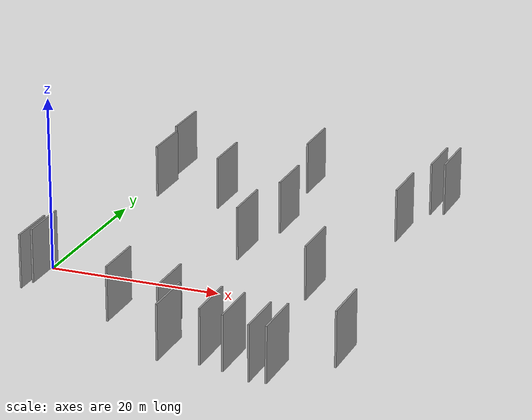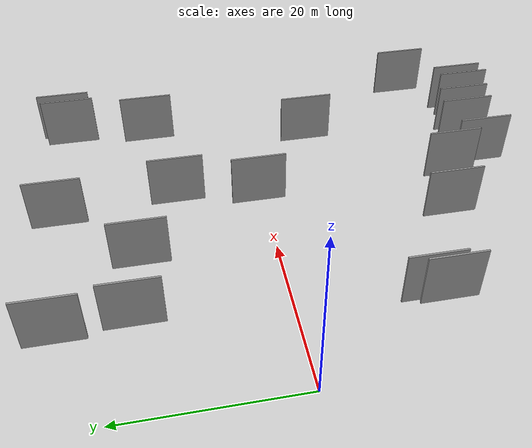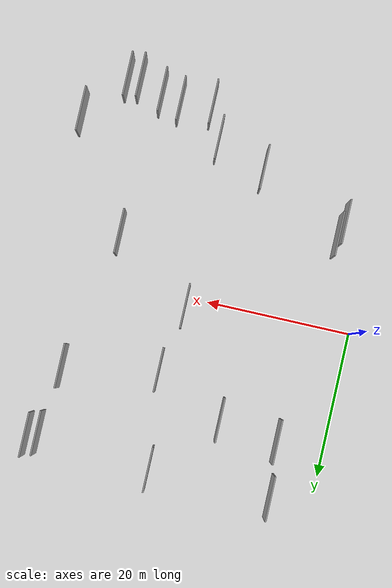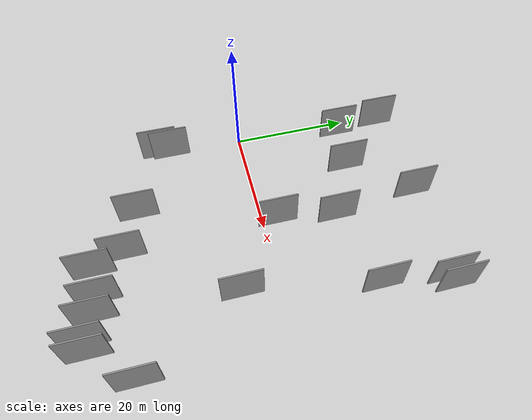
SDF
<sdf version="1.6">
 <world name="default">
  <scene>
   <sky><clouds><speed>12</speed></clouds></sky>
   <ambient>0.4 0.4 0.4 1</ambient>
   <background>0.7 0.7 0.7 1</background>
   <shadows>1</shadows>
  </scene>
  <gravity>0 0 -9.8066</gravity>
  <magnetic_field>6e-06 2.3e-05 -4.2e-05</magnetic_field>
  <physics default="0" name="default_physics" type="ode">
   <ode>
    <solver>
     <type>quick</type>
     <iters>10</iters>
     <sor>1.0</sor>
     <use_dynamic_moi_rescaling>0</use_dynamic_moi_rescaling>
    </solver>
    <constraints>
     <cfm>0</cfm>
     <erp>0.2</erp>
     <contact_max_correcting_vel>100</contact_max_correcting_vel>
     <contact_surface_layer>0.001</contact_surface_layer>
    </constraints>
   </ode>
   <max_step_size>0.004</max_step_size>
   <real_time_factor>1</real_time_factor>
   <real_time_update_rate>250</real_time_update_rate>
  </physics>
  <light name="sun" type="directional">
   <pose>0 0 10 0 0 0</pose>
   <diffuse>0.8 0.8 0.8 1</diffuse>
   <specular>0.2 0.2 0.2 1</specular>
   <attenuation>
    <range>1000</range>
    <constant>0.9</constant>
    <linear>0.01</linear>
    <quadratic>0.001</quadratic>
   </attenuation>
   <direction>-0.5 0.1 -0.9</direction>
  </light>
  <model name="grey_wall_1">
   <static>1</static>
   <pose>23.3188 -21.1912 5.0 0.000000 0.000000 1.570796</pose>
   <link name="link">
    <pose>0 0 3.00 0 0 0</pose>
    <collision name="collision"><geometry><box><size>6.00 0.2 6.00</size></box></geometry></collision>
    <visual name="visual">
     <cast_shadows>0</cast_shadows>
     <geometry><box><size>6.00 0.2 6.00</size></box></geometry>
     <material>
      <script>
       <uri>model://grey_wall/materials/scripts</uri>
       <uri>model://grey_wall/materials/textures</uri>
       <name>vrc/grey_wall</name>
      </script>
     </material>
    </visual>
   </link>
  </model>
  <model name="grey_wall_2">
   <static>1</static>
   <pose>15.0276 15.0759 5.0 0.000000 0.000000 1.570796</pose>
   <link name="link">
    <pose>0 0 3.00 0 0 0</pose>
    <collision name="collision"><geometry><box><size>6.00 0.2 6.00</size></box></geometry></collision>
    <visual name="visual">
     <cast_shadows>0</cast_shadows>
     <geometry><box><size>6.00 0.2 6.00</size></box></geometry>
     <material>
      <script>
       <uri>model://grey_wall/materials/scripts</uri>
       <uri>model://grey_wall/materials/textures</uri>
       <name>vrc/grey_wall</name>
      </script>
     </material>
    </visual>
   </link>
  </model>
  <model name="grey_wall_3">
   <static>1</static>
   <pose>35.2843 -26.9873 5.0 0.000000 0.000000 1.570796</pose>
   <link name="link">
    <pose>0 0 3.00 0 0 0</pose>
    <collision name="collision"><geometry><box><size>6.00 0.2 6.00</size></box></geometry></collision>
    <visual name="visual">
     <cast_shadows>0</cast_shadows>
     <geometry><box><size>6.00 0.2 6.00</size></box></geometry>
     <material>
      <script>
       <uri>model://grey_wall/materials/scripts</uri>
       <uri>model://grey_wall/materials/textures</uri>
       <name>vrc/grey_wall</name>
      </script>
     </material>
    </visual>
   </link>
  </model>
  <model name="grey_wall_4">
   <static>1</static>
   <pose>39.4836 22.5314 5.0 0.000000 0.000000 1.570796</pose>
   <link name="link">
    <pose>0 0 3.00 0 0 0</pose>
    <collision name="collision"><geometry><box><size>6.00 0.2 6.00</size></box></geometry></collision>
    <visual name="visual">
     <cast_shadows>0</cast_shadows>
     <geometry><box><size>6.00 0.2 6.00</size></box></geometry>
     <material>
      <script>
       <uri>model://grey_wall/materials/scripts</uri>
       <uri>model://grey_wall/materials/textures</uri>
       <name>vrc/grey_wall</name>
      </script>
     </material>
    </visual>
   </link>
  </model>
  <model name="grey_wall_5">
   <static>1</static>
   <pose>32.0697 -25.7265 5.0 0.000000 0.000000 1.570796</pose>
   <link name="link">
    <pose>0 0 3.00 0 0 0</pose>
    <collision name="collision"><geometry><box><size>6.00 0.2 6.00</size></box></geometry></collision>
    <visual name="visual">
     <cast_shadows>0</cast_shadows>
     <geometry><box><size>6.00 0.2 6.00</size></box></geometry>
     <material>
      <script>
       <uri>model://grey_wall/materials/scripts</uri>
       <uri>model://grey_wall/materials/textures</uri>
       <name>vrc/grey_wall</name>
      </script>
     </material>
    </visual>
   </link>
  </model>
  <model name="grey_wall_6">
   <static>1</static>
   <pose>24.3030 10.4485 5.0 0.000000 0.000000 1.570796</pose>
   <link name="link">
    <pose>0 0 3.00 0 0 0</pose>
    <collision name="collision"><geometry><box><size>6.00 0.2 6.00</size></box></geometry></collision>
    <visual name="visual">
     <cast_shadows>0</cast_shadows>
     <geometry><box><size>6.00 0.2 6.00</size></box></geometry>
     <material>
      <script>
       <uri>model://grey_wall/materials/scripts</uri>
       <uri>model://grey_wall/materials/textures</uri>
       <name>vrc/grey_wall</name>
      </script>
     </material>
    </visual>
   </link>
  </model>
  <model name="grey_wall_7">
   <static>1</static>
   <pose>4.5854 -13.9679 5.0 0.000000 0.000000 1.570796</pose>
   <link name="link">
    <pose>0 0 3.00 0 0 0</pose>
    <collision name="collision"><geometry><box><size>6.00 0.2 6.00</size></box></geometry></collision>
    <visual name="visual">
     <cast_shadows>0</cast_shadows>
     <geometry><box><size>6.00 0.2 6.00</size></box></geometry>
     <material>
      <script>
       <uri>model://grey_wall/materials/scripts</uri>
       <uri>model://grey_wall/materials/textures</uri>
       <name>vrc/grey_wall</name>
      </script>
     </material>
    </visual>
   </link>
  </model>
  <model name="grey_wall_8">
   <static>1</static>
   <pose>16.6071 -18.6587 5.0 0.000000 0.000000 1.570796</pose>
   <link name="link">
    <pose>0 0 3.00 0 0 0</pose>
    <collision name="collision"><geometry><box><size>6.00 0.2 6.00</size></box></geometry></collision>
    <visual name="visual">
     <cast_shadows>0</cast_shadows>
     <geometry><box><size>6.00 0.2 6.00</size></box></geometry>
     <material>
      <script>
       <uri>model://grey_wall/materials/scripts</uri>
       <uri>model://grey_wall/materials/textures</uri>
       <name>vrc/grey_wall</name>
      </script>
     </material>
    </visual>
   </link>
  </model>
  <model name="grey_wall_9">
   <static>1</static>
   <pose>22.7639 23.3991 5.0 0.000000 0.000000 1.570796</pose>
   <link name="link">
    <pose>0 0 3.00 0 0 0</pose>
    <collision name="collision"><geometry><box><size>6.00 0.2 6.00</size></box></geometry></collision>
    <visual name="visual">
     <cast_shadows>0</cast_shadows>
     <geometry><box><size>6.00 0.2 6.00</size></box></geometry>
     <material>
      <script>
       <uri>model://grey_wall/materials/scripts</uri>
       <uri>model://grey_wall/materials/textures</uri>
       <name>vrc/grey_wall</name>
      </script>
     </material>
    </visual>
   </link>
  </model>
  <model name="grey_wall_10">
   <static>1</static>
   <pose>5.1077 -12.2120 5.0 0.000000 0.000000 1.570796</pose>
   <link name="link">
    <pose>0 0 3.00 0 0 0</pose>
    <collision name="collision"><geometry><box><size>6.00 0.2 6.00</size></box></geometry></collision>
    <visual name="visual">
     <cast_shadows>0</cast_shadows>
     <geometry><box><size>6.00 0.2 6.00</size></box></geometry>
     <material>
      <script>
       <uri>model://grey_wall/materials/scripts</uri>
       <uri>model://grey_wall/materials/textures</uri>
       <name>vrc/grey_wall</name>
      </script>
     </material>
    </visual>
   </link>
  </model>
  <model name="grey_wall_11">
   <static>1</static>
   <pose>38.0508 22.0143 5.0 0.000000 0.000000 1.570796</pose>
   <link name="link">
    <pose>0 0 3.00 0 0 0</pose>
    <collision name="collision"><geometry><box><size>6.00 0.2 6.00</size></box></geometry></collision>
    <visual name="visual">
     <cast_shadows>0</cast_shadows>
     <geometry><box><size>6.00 0.2 6.00</size></box></geometry>
     <material>
      <script>
       <uri>model://grey_wall/materials/scripts</uri>
       <uri>model://grey_wall/materials/textures</uri>
       <name>vrc/grey_wall</name>
      </script>
     </material>
    </visual>
   </link>
  </model>
  <model name="grey_wall_12">
   <static>1</static>
   <pose>36.9819 -26.7322 5.0 0.000000 0.000000 1.570796</pose>
   <link name="link">
    <pose>0 0 3.00 0 0 0</pose>
    <collision name="collision"><geometry><box><size>6.00 0.2 6.00</size></box></geometry></collision>
    <visual name="visual">
     <cast_shadows>0</cast_shadows>
     <geometry><box><size>6.00 0.2 6.00</size></box></geometry>
     <material>
      <script>
       <uri>model://grey_wall/materials/scripts</uri>
       <uri>model://grey_wall/materials/textures</uri>
       <name>vrc/grey_wall</name>
      </script>
     </material>
    </visual>
   </link>
  </model>
  <model name="grey_wall_13">
   <static>1</static>
   <pose>6.4068 23.5687 5.0 0.000000 0.000000 1.570796</pose>
   <link name="link">
    <pose>0 0 3.00 0 0 0</pose>
    <collision name="collision"><geometry><box><size>6.00 0.2 6.00</size></box></geometry></collision>
    <visual name="visual">
     <cast_shadows>0</cast_shadows>
     <geometry><box><size>6.00 0.2 6.00</size></box></geometry>
     <material>
      <script>
       <uri>model://grey_wall/materials/scripts</uri>
       <uri>model://grey_wall/materials/textures</uri>
       <name>vrc/grey_wall</name>
      </script>
     </material>
    </visual>
   </link>
  </model>
  <model name="grey_wall_14">
   <static>1</static>
   <pose>25.1080 -25.6219 5.0 0.000000 0.000000 1.570796</pose>
   <link name="link">
    <pose>0 0 3.00 0 0 0</pose>
    <collision name="collision"><geometry><box><size>6.00 0.2 6.00</size></box></geometry></collision>
    <visual name="visual">
     <cast_shadows>0</cast_shadows>
     <geometry><box><size>6.00 0.2 6.00</size></box></geometry>
     <material>
      <script>
       <uri>model://grey_wall/materials/scripts</uri>
       <uri>model://grey_wall/materials/textures</uri>
       <name>vrc/grey_wall</name>
      </script>
     </material>
    </visual>
   </link>
  </model>
  <model name="grey_wall_15">
   <static>1</static>
   <pose>36.9970 12.7743 5.0 0.000000 0.000000 1.570796</pose>
   <link name="link">
    <pose>0 0 3.00 0 0 0</pose>
    <collision name="collision"><geometry><box><size>6.00 0.2 6.00</size></box></geometry></collision>
    <visual name="visual">
     <cast_shadows>0</cast_shadows>
     <geometry><box><size>6.00 0.2 6.00</size></box></geometry>
     <material>
      <script>
       <uri>model://grey_wall/materials/scripts</uri>
       <uri>model://grey_wall/materials/textures</uri>
       <name>vrc/grey_wall</name>
      </script>
     </material>
    </visual>
   </link>
  </model>
  <model name="grey_wall_16">
   <static>1</static>
   <pose>7.1022 16.2112 5.0 0.000000 0.000000 1.570796</pose>
   <link name="link">
    <pose>0 0 3.00 0 0 0</pose>
    <collision name="collision"><geometry><box><size>6.00 0.2 6.00</size></box></geometry></collision>
    <visual name="visual">
     <cast_shadows>0</cast_shadows>
     <geometry><box><size>6.00 0.2 6.00</size></box></geometry>
     <material>
      <script>
       <uri>model://grey_wall/materials/scripts</uri>
       <uri>model://grey_wall/materials/textures</uri>
       <name>vrc/grey_wall</name>
      </script>
     </material>
    </visual>
   </link>
  </model>
  <model name="grey_wall_17">
   <static>1</static>
   <pose>33.4078 -6.1704 5.0 0.000000 0.000000 1.570796</pose>
   <link name="link">
    <pose>0 0 3.00 0 0 0</pose>
    <collision name="collision"><geometry><box><size>6.00 0.2 6.00</size></box></geometry></collision>
    <visual name="visual">
     <cast_shadows>0</cast_shadows>
     <geometry><box><size>6.00 0.2 6.00</size></box></geometry>
     <material>
      <script>
       <uri>model://grey_wall/materials/scripts</uri>
       <uri>model://grey_wall/materials/textures</uri>
       <name>vrc/grey_wall</name>
      </script>
     </material>
    </visual>
   </link>
  </model>
  <model name="grey_wall_18">
   <static>1</static>
   <pose>41.9638 -20.8687 5.0 0.000000 0.000000 1.570796</pose>
   <link name="link">
    <pose>0 0 3.00 0 0 0</pose>
    <collision name="collision"><geometry><box><size>6.00 0.2 6.00</size></box></geometry></collision>
    <visual name="visual">
     <cast_shadows>0</cast_shadows>
     <geometry><box><size>6.00 0.2 6.00</size></box></geometry>
     <material>
      <script>
       <uri>model://grey_wall/materials/scripts</uri>
       <uri>model://grey_wall/materials/textures</uri>
       <name>vrc/grey_wall</name>
      </script>
     </material>
    </visual>
   </link>
  </model>
  <model name="grey_wall_19">
   <static>1</static>
   <pose>22.7947 1.5278 5.0 0.000000 0.000000 1.570796</pose>
   <link name="link">
    <pose>0 0 3.00 0 0 0</pose>
    <collision name="collision"><geometry><box><size>6.00 0.2 6.00</size></box></geometry></collision>
    <visual name="visual">
     <cast_shadows>0</cast_shadows>
     <geometry><box><size>6.00 0.2 6.00</size></box></geometry>
     <material>
      <script>
       <uri>model://grey_wall/materials/scripts</uri>
       <uri>model://grey_wall/materials/textures</uri>
       <name>vrc/grey_wall</name>
      </script>
     </material>
    </visual>
   </link>
  </model>
  <model name="grey_wall_20">
   <static>1</static>
   <pose>29.4041 -25.1002 5.0 0.000000 0.000000 1.570796</pose>
   <link name="link">
    <pose>0 0 3.00 0 0 0</pose>
    <collision name="collision"><geometry><box><size>6.00 0.2 6.00</size></box></geometry></collision>
    <visual name="visual">
     <cast_shadows>0</cast_shadows>
     <geometry><box><size>6.00 0.2 6.00</size></box></geometry>
     <material>
      <script>
       <uri>model://grey_wall/materials/scripts</uri>
       <uri>model://grey_wall/materials/textures</uri>
       <name>vrc/grey_wall</name>
      </script>
     </material>
    </visual>
   </link>
  </model>
 </world>
</sdf>
